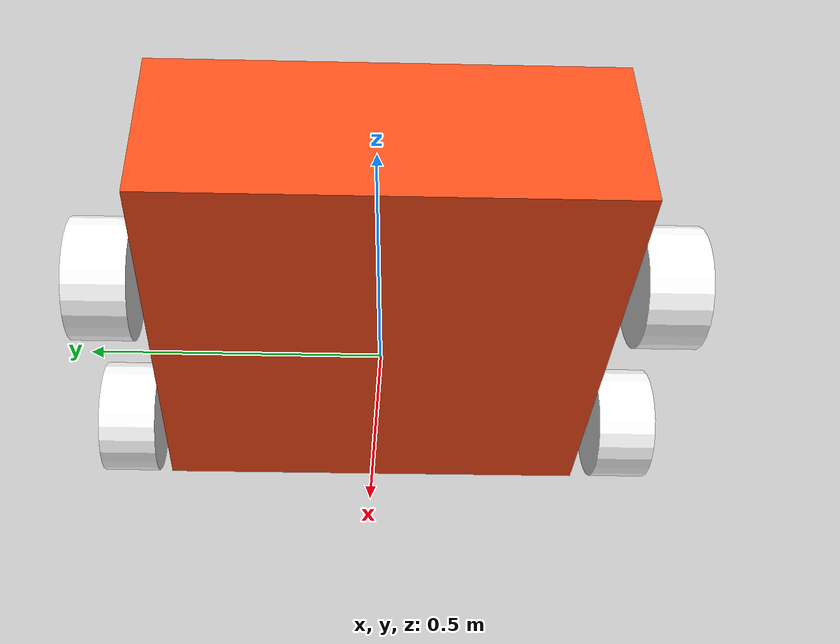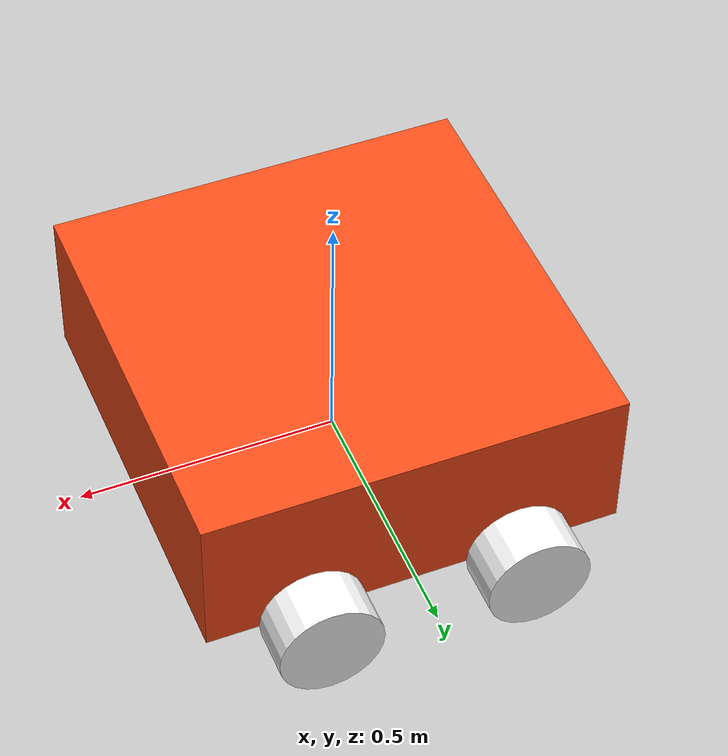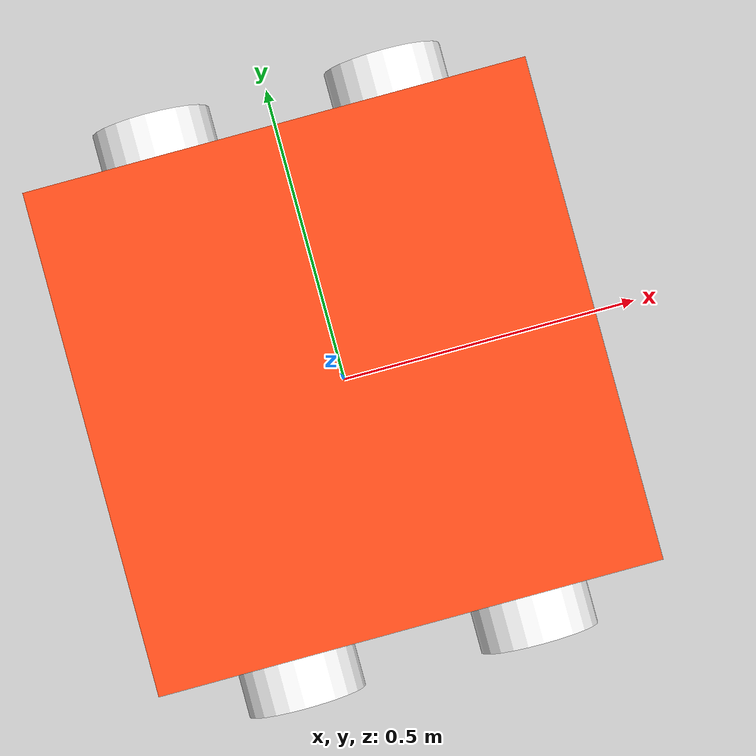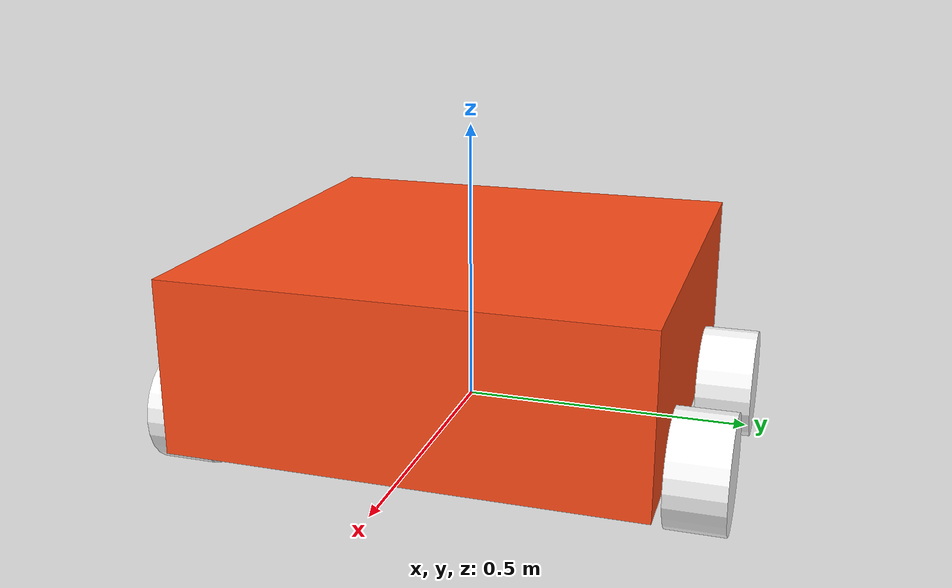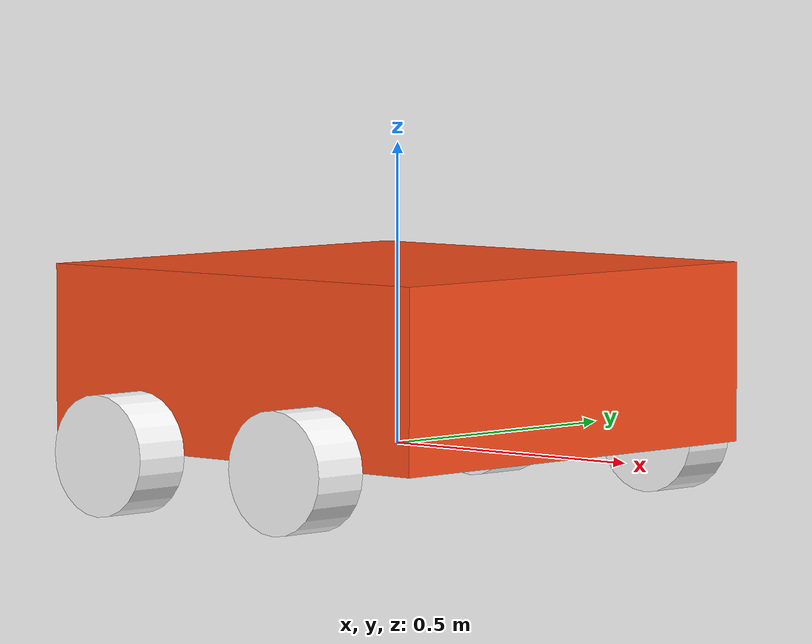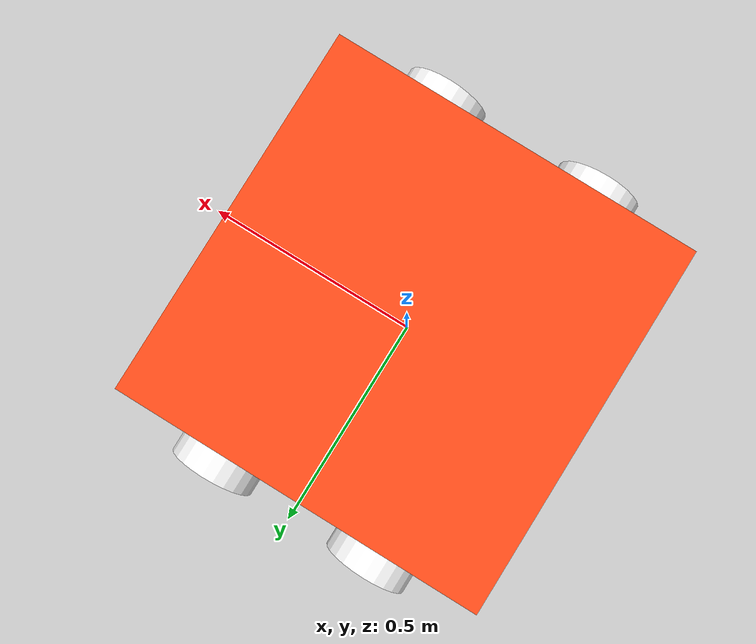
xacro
<?xml version="1.0"?>
<robot xmlns:xacro="http://www.ros.org/wiki/xacro">

    <xacro:include filename="macros.xacro"/>

    <material name="white">
        <color rgba="1 1 1 1"/>
    </material>

    <material name="orange">
        <color rgba="1 0.3 0.1 1"/>
    </material>

    <material name="blue">
        <color rgba="0.2 0.2 1 1"/>
    </material>

    <material name="black">
        <color rgba="0 0 0 1"/>
    </material>

    <material name="red">
        <color rgba="1 0 0 1"/>
    </material>

    <link name="base_link">
    </link>

    <joint name="chassis_link" type="fixed">
        <parent link="base_link"/>
        <child link="chassis"/>
    </joint>

    <link name="chassis">
        <visual>
            <origin xyz="0 0 0.15" />
            <geometry>
            <box size="0.8 0.8 0.3"/>
            </geometry>
            <material name="orange"/>
        </visual>
        <collision>
            <origin xyz="0 0 0.15" />
            <geometry>
            <box size="0.8 0.8 0.3"/>
            </geometry>
            <material name="orange"/>
        </collision>
        <xacro:inertial_box mass="20.5" x="0.8" y="0.8" z="0.3">
            <origin xyz="0 0 0.15" rpy="0 0 0"/>
        </xacro:inertial_box>
    </link>

    <gazebo reference="chassis">
        <material>Gazebo/Red</material>
    </gazebo>

    <joint name="FL_wheel_link" type="continuous">
       <parent link="chassis"/>
       <child link="FL_wheel"/>
       <origin xyz="0.2 0.45 0" rpy="-${pi/2} 0 0"/>
       <axis xyz="0 0 1"/>
    </joint>

    <link name="FL_wheel">
        <visual>
            <origin xyz="0 0 0" />
            <geometry>
                <cylinder length="0.1" radius="0.1"/>
            </geometry>
            <material name="white"/>
        </visual>
        <collision>
            <origin xyz="0 0 0" />
            <geometry>
                <cylinder length="0.1" radius="0.1"/>
            </geometry>
        </collision>
        <xacro:inertial_cylinder mass="0.5" length="0.1" radius="0.1">
            <origin xyz="0 0 0" rpy="0 0 0"/>
        </xacro:inertial_cylinder>
    </link>

    <gazebo reference="FL_wheel">
        <material>Gazebo/White</material>
        <mu1 value="0.8"/>
        <mu2 value="0.8"/>
    </gazebo>

    <joint name="FR_wheel_link" type="continuous">
        <parent link="chassis"/>
        <child link="FR_wheel"/>
        <origin xyz="0.2 -0.45 0" rpy="${pi/2} 0 0"/>
        <axis xyz="0 0 -1"/>
    </joint>

    <link name="FR_wheel">
        <visual>
            <origin xyz="0 0 0"  />
            <geometry>
                <cylinder length="0.1" radius="0.1"/>
            </geometry>
            <material name="white"/>
        </visual>
        <collision>
            <origin xyz="0 0 0" />
            <geometry>
                <cylinder length="0.1" radius="0.1"/>
            </geometry>
        </collision>
        <xacro:inertial_cylinder mass="0.5" length="0.1" radius="0.1">
            <origin xyz="0 0 0" rpy="0 0 0"/>
        </xacro:inertial_cylinder>
    </link>

    <gazebo reference="FR_wheel">
        <material>Gazebo/White</material>
        <mu1 value="0.8"/>
        <mu2 value="0.8"/>
    </gazebo>

    <joint name="BL_wheel_link" type="continuous">
        <parent link="chassis"/>
        <child link="BL_wheel"/>
        <origin xyz="-0.2 0.45 0" rpy="-${pi/2} 0 0"/>
        <axis xyz="0 0 1"/>
    </joint>

    <link name="BL_wheel">
        <visual>
            <origin xyz="0 0 0" />
            <geometry>
                <cylinder length="0.1" radius="0.1"/>
            </geometry>
            <material name="white"/>
        </visual>
        <collision>
            <origin xyz="0 0 0" />
            <geometry>
                <cylinder length="0.1" radius="0.1"/>
            </geometry>
        </collision>
        <xacro:inertial_cylinder mass="0.5" length="0.1" radius="0.1">
            <origin xyz="0 0 0" rpy="0 0 0"/>
        </xacro:inertial_cylinder>
    </link>

    <gazebo reference="BL_wheel">
        <material>Gazebo/White</material>
        <mu1 value="0.8"/>
        <mu2 value="0.8"/>
    </gazebo>

    <joint name="BR_wheel_link" type="continuous">
        <parent link="chassis"/>
        <child link="BR_wheel"/>
        <origin xyz="-0.2 -0.45 0" rpy="${pi/2} 0 0"/>
        <axis xyz="0 0 -1"/>
    </joint>

    <link name="BR_wheel">
        <visual>
            <origin xyz="0 0 0" />
            <geometry>
                <cylinder length="0.1" radius="0.1"/>
            </geometry>
            <material name="white"/>
        </visual>
        <collision>
            <origin xyz="0 0 0" />
            <geometry>
                <cylinder length="0.1" radius="0.1"/>
            </geometry>
        </collision>
        <xacro:inertial_cylinder mass="0.5" length="0.1" radius="0.1">
            <origin xyz="0 0 0" rpy="0 0 0"/>
        </xacro:inertial_cylinder>
    </link>

    <gazebo reference="BR_wheel">
        <material>Gazebo/White</material>
        <mu1 value="0.8"/>
        <mu2 value="0.8"/>
    </gazebo>

</robot>
